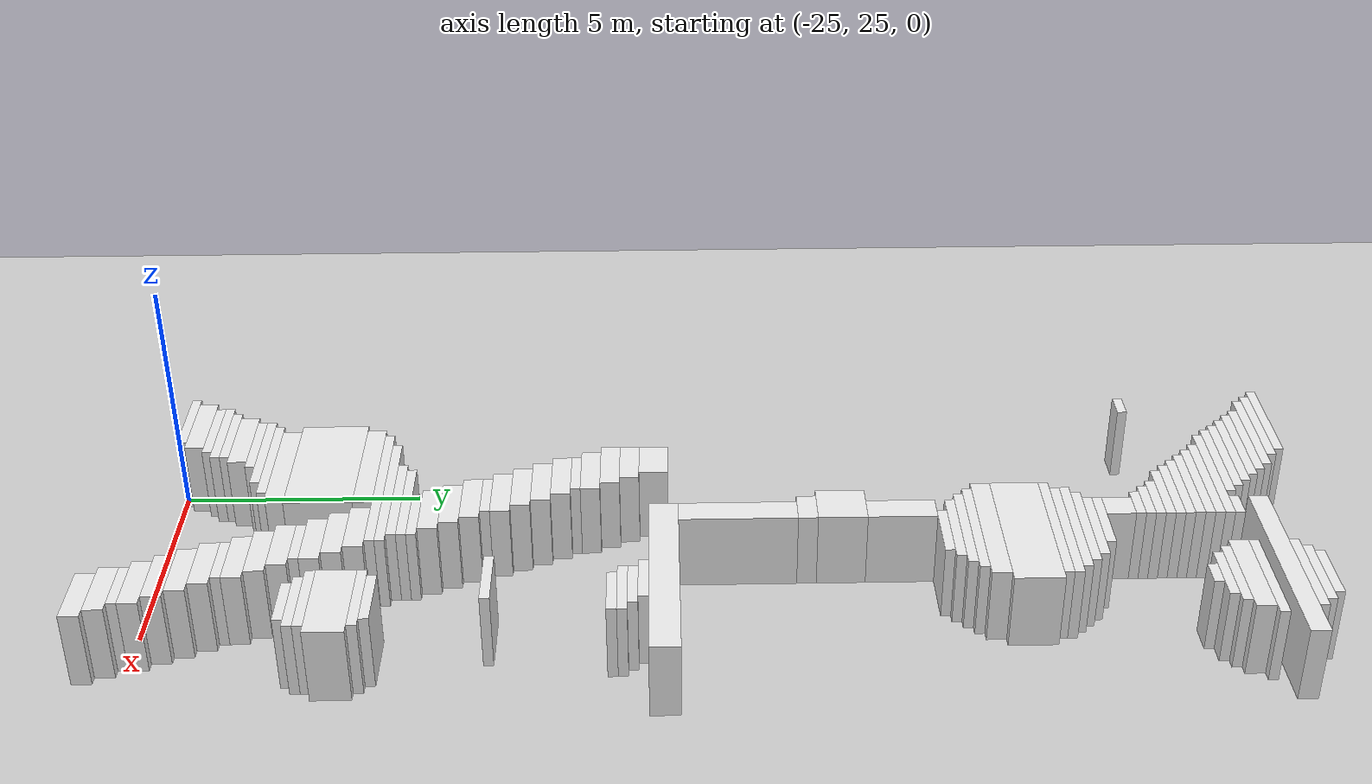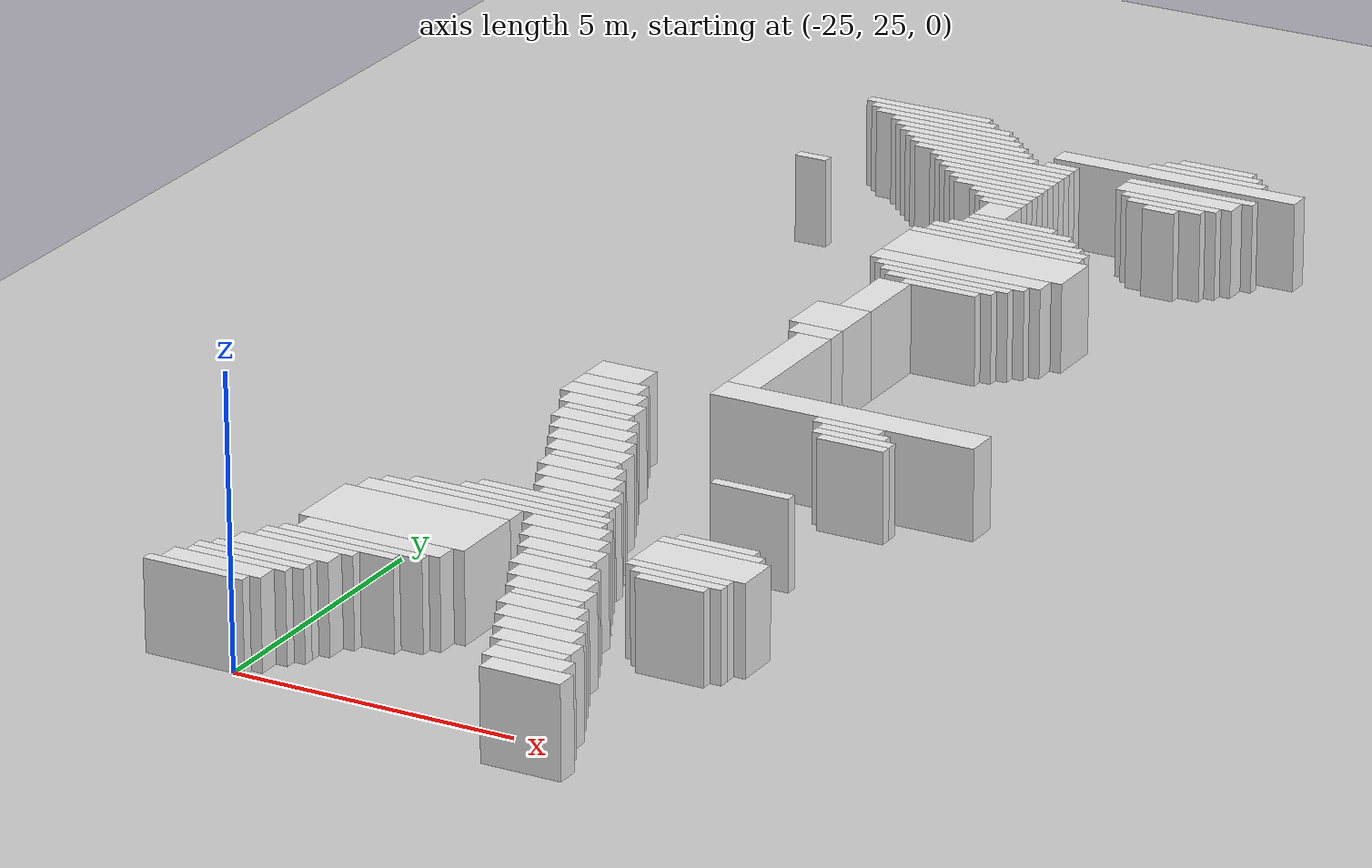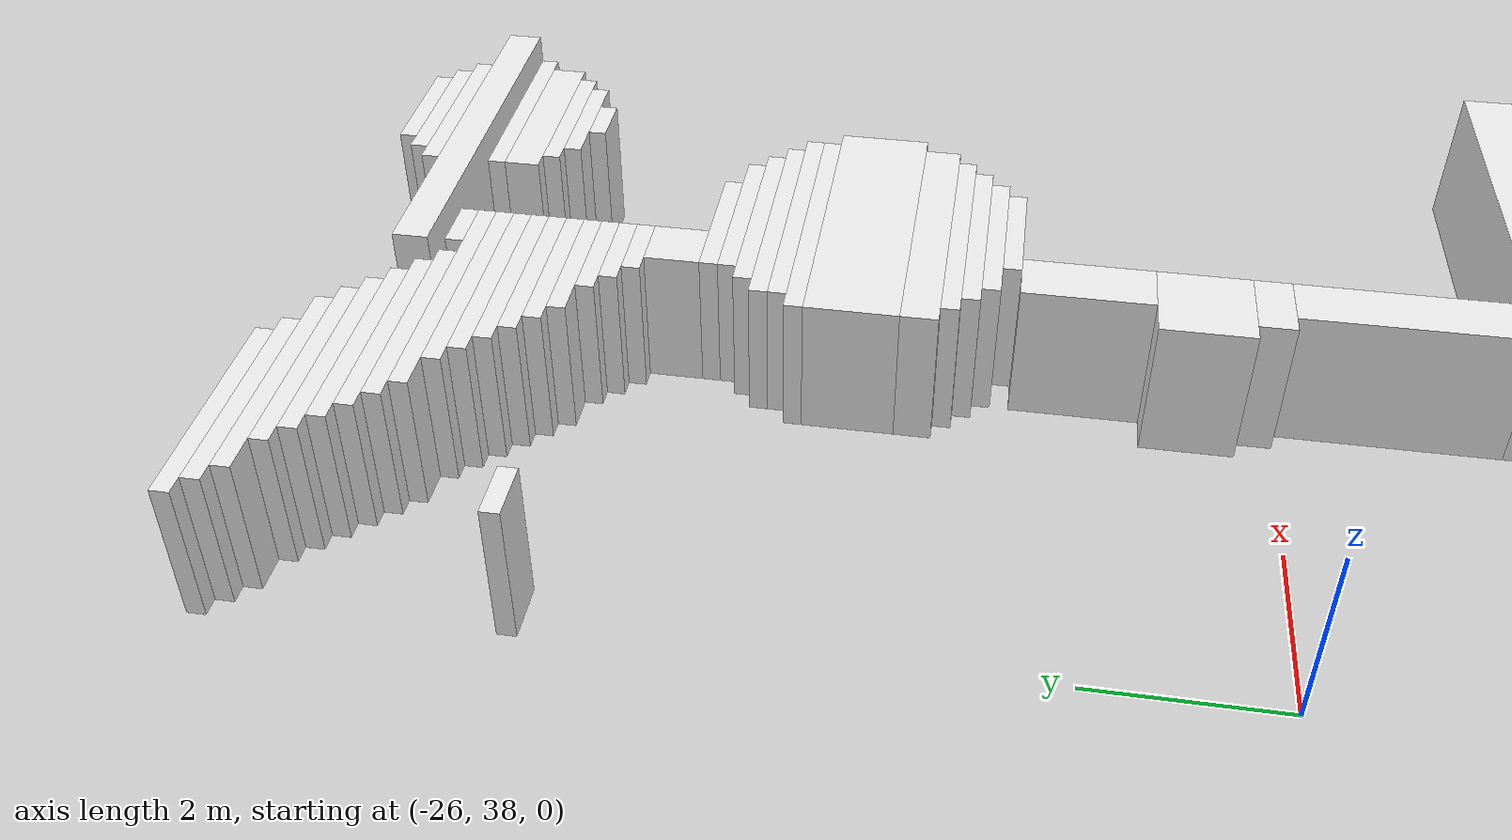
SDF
<sdf version="1.7">
 <world name="default">
  <model name="ground_plane">
   <static>1</static>
   <link name="link">
    <collision name="collision">
     <geometry><plane><normal>0 0 1</normal><size>120 120</size></plane></geometry>
    </collision>
    <visual name="visual">
     <geometry><plane><normal>0 0 1</normal><size>120 120</size></plane></geometry>
     <material>
      <script><uri>file://media/materials/scripts/gazebo.material</uri><name>Gazebo/Grey</name></script>
     </material>
    </visual>
   </link>
  </model>
  <model name="random_complex_03_model">
   <static>1</static>
   <link name="obs_2">
    <pose>-25.2000 48.3000 0.8000 0 0 0</pose>
    <collision name="obs_2_col"><geometry><box><size>2.4000 0.2000 1.6000</size></box></geometry></collision>
    <visual name="obs_2_vis">
     <geometry><box><size>2.4000 0.2000 1.6000</size></box></geometry>
     <material>
      <script><uri>file://media/materials/scripts/gazebo.material</uri><name>Gazebo/White</name></script>
     </material>
    </visual>
   </link>
   <link name="obs_4">
    <pose>-25.0000 48.1000 0.8000 0 0 0</pose>
    <collision name="obs_4_col"><geometry><box><size>2.4000 0.2000 1.6000</size></box></geometry></collision>
    <visual name="obs_4_vis">
     <geometry><box><size>2.4000 0.2000 1.6000</size></box></geometry>
     <material>
      <script><uri>file://media/materials/scripts/gazebo.material</uri><name>Gazebo/White</name></script>
     </material>
    </visual>
   </link>
   <link name="obs_5">
    <pose>-19.5000 48.1000 0.8000 0 0 0</pose>
    <collision name="obs_5_col"><geometry><box><size>1.4000 0.2000 1.6000</size></box></geometry></collision>
    <visual name="obs_5_vis">
     <geometry><box><size>1.4000 0.2000 1.6000</size></box></geometry>
     <material>
      <script><uri>file://media/materials/scripts/gazebo.material</uri><name>Gazebo/White</name></script>
     </material>
    </visual>
   </link>
   <link name="obs_8">
    <pose>-24.7000 47.9000 0.8000 0 0 0</pose>
    <collision name="obs_8_col"><geometry><box><size>2.6000 0.2000 1.6000</size></box></geometry></collision>
    <visual name="obs_8_vis">
     <geometry><box><size>2.6000 0.2000 1.6000</size></box></geometry>
     <material>
      <script><uri>file://media/materials/scripts/gazebo.material</uri><name>Gazebo/White</name></script>
     </material>
    </visual>
   </link>
   <link name="obs_9">
    <pose>-19.5000 47.9000 0.8000 0 0 0</pose>
    <collision name="obs_9_col"><geometry><box><size>1.8000 0.2000 1.6000</size></box></geometry></collision>
    <visual name="obs_9_vis">
     <geometry><box><size>1.8000 0.2000 1.6000</size></box></geometry>
     <material>
      <script><uri>file://media/materials/scripts/gazebo.material</uri><name>Gazebo/White</name></script>
     </material>
    </visual>
   </link>
   <link name="obs_13">
    <pose>-24.4000 47.7000 0.8000 0 0 0</pose>
    <collision name="obs_13_col"><geometry><box><size>2.4000 0.2000 1.6000</size></box></geometry></collision>
    <visual name="obs_13_vis">
     <geometry><box><size>2.4000 0.2000 1.6000</size></box></geometry>
     <material>
      <script><uri>file://media/materials/scripts/gazebo.material</uri><name>Gazebo/White</name></script>
     </material>
    </visual>
   </link>
   <link name="obs_14">
    <pose>-19.5000 47.7000 0.8000 0 0 0</pose>
    <collision name="obs_14_col"><geometry><box><size>2.2000 0.2000 1.6000</size></box></geometry></collision>
    <visual name="obs_14_vis">
     <geometry><box><size>2.2000 0.2000 1.6000</size></box></geometry>
     <material>
      <script><uri>file://media/materials/scripts/gazebo.material</uri><name>Gazebo/White</name></script>
     </material>
    </visual>
   </link>
   <link name="obs_18">
    <pose>-24.2000 47.5000 0.8000 0 0 0</pose>
    <collision name="obs_18_col"><geometry><box><size>2.4000 0.2000 1.6000</size></box></geometry></collision>
    <visual name="obs_18_vis">
     <geometry><box><size>2.4000 0.2000 1.6000</size></box></geometry>
     <material>
      <script><uri>file://media/materials/scripts/gazebo.material</uri><name>Gazebo/White</name></script>
     </material>
    </visual>
   </link>
   <link name="obs_21">
    <pose>-19.9000 47.4000 0.8000 0 0 0</pose>
    <collision name="obs_21_col"><geometry><box><size>4.6000 0.4000 1.6000</size></box></geometry></collision>
    <visual name="obs_21_vis">
     <geometry><box><size>4.6000 0.4000 1.6000</size></box></geometry>
     <material>
      <script><uri>file://media/materials/scripts/gazebo.material</uri><name>Gazebo/White</name></script>
     </material>
    </visual>
   </link>
   <link name="obs_23">
    <pose>-24.0000 47.3000 0.8000 0 0 0</pose>
    <collision name="obs_23_col"><geometry><box><size>2.4000 0.2000 1.6000</size></box></geometry></collision>
    <visual name="obs_23_vis">
     <geometry><box><size>2.4000 0.2000 1.6000</size></box></geometry>
     <material>
      <script><uri>file://media/materials/scripts/gazebo.material</uri><name>Gazebo/White</name></script>
     </material>
    </visual>
   </link>
   <link name="obs_25">
    <pose>-23.8000 47.1000 0.8000 0 0 0</pose>
    <collision name="obs_25_col"><geometry><box><size>2.4000 0.2000 1.6000</size></box></geometry></collision>
    <visual name="obs_25_vis">
     <geometry><box><size>2.4000 0.2000 1.6000</size></box></geometry>
     <material>
      <script><uri>file://media/materials/scripts/gazebo.material</uri><name>Gazebo/White</name></script>
     </material>
    </visual>
   </link>
   <link name="obs_27">
    <pose>-23.6000 46.9000 0.8000 0 0 0</pose>
    <collision name="obs_27_col"><geometry><box><size>2.4000 0.2000 1.6000</size></box></geometry></collision>
    <visual name="obs_27_vis">
     <geometry><box><size>2.4000 0.2000 1.6000</size></box></geometry>
     <material>
      <script><uri>file://media/materials/scripts/gazebo.material</uri><name>Gazebo/White</name></script>
     </material>
    </visual>
   </link>
   <link name="obs_28">
    <pose>-21.9000 46.9000 0.8000 0 0 0</pose>
    <collision name="obs_28_col"><geometry><box><size>0.6000 0.2000 1.6000</size></box></geometry></collision>
    <visual name="obs_28_vis">
     <geometry><box><size>0.6000 0.2000 1.6000</size></box></geometry>
     <material>
      <script><uri>file://media/materials/scripts/gazebo.material</uri><name>Gazebo/White</name></script>
     </material>
    </visual>
   </link>
   <link name="obs_29">
    <pose>-19.4000 46.9000 0.8000 0 0 0</pose>
    <collision name="obs_29_col"><geometry><box><size>2.4000 0.2000 1.6000</size></box></geometry></collision>
    <visual name="obs_29_vis">
     <geometry><box><size>2.4000 0.2000 1.6000</size></box></geometry>
     <material>
      <script><uri>file://media/materials/scripts/gazebo.material</uri><name>Gazebo/White</name></script>
     </material>
    </visual>
   </link>
   <link name="obs_33">
    <pose>-23.1000 46.7000 0.8000 0 0 0</pose>
    <collision name="obs_33_col"><geometry><box><size>3.0000 0.2000 1.6000</size></box></geometry></collision>
    <visual name="obs_33_vis">
     <geometry><box><size>3.0000 0.2000 1.6000</size></box></geometry>
     <material>
      <script><uri>file://media/materials/scripts/gazebo.material</uri><name>Gazebo/White</name></script>
     </material>
    </visual>
   </link>
   <link name="obs_35">
    <pose>-19.5000 46.6000 0.8000 0 0 0</pose>
    <collision name="obs_35_col"><geometry><box><size>2.2000 0.4000 1.6000</size></box></geometry></collision>
    <visual name="obs_35_vis">
     <geometry><box><size>2.2000 0.4000 1.6000</size></box></geometry>
     <material>
      <script><uri>file://media/materials/scripts/gazebo.material</uri><name>Gazebo/White</name></script>
     </material>
    </visual>
   </link>
   <link name="obs_36">
    <pose>-22.9000 46.5000 0.8000 0 0 0</pose>
    <collision name="obs_36_col"><geometry><box><size>2.6000 0.2000 1.6000</size></box></geometry></collision>
    <visual name="obs_36_vis">
     <geometry><box><size>2.6000 0.2000 1.6000</size></box></geometry>
     <material>
      <script><uri>file://media/materials/scripts/gazebo.material</uri><name>Gazebo/White</name></script>
     </material>
    </visual>
   </link>
   <link name="obs_39">
    <pose>-22.8000 46.3000 0.8000 0 0 0</pose>
    <collision name="obs_39_col"><geometry><box><size>2.4000 0.2000 1.6000</size></box></geometry></collision>
    <visual name="obs_39_vis">
     <geometry><box><size>2.4000 0.2000 1.6000</size></box></geometry>
     <material>
      <script><uri>file://media/materials/scripts/gazebo.material</uri><name>Gazebo/White</name></script>
     </material>
    </visual>
   </link>
   <link name="obs_40">
    <pose>-19.5000 46.3000 0.8000 0 0 0</pose>
    <collision name="obs_40_col"><geometry><box><size>1.8000 0.2000 1.6000</size></box></geometry></collision>
    <visual name="obs_40_vis">
     <geometry><box><size>1.8000 0.2000 1.6000</size></box></geometry>
     <material>
      <script><uri>file://media/materials/scripts/gazebo.material</uri><name>Gazebo/White</name></script>
     </material>
    </visual>
   </link>
   <link name="obs_43">
    <pose>-22.7000 46.1000 0.8000 0 0 0</pose>
    <collision name="obs_43_col"><geometry><box><size>2.2000 0.2000 1.6000</size></box></geometry></collision>
    <visual name="obs_43_vis">
     <geometry><box><size>2.2000 0.2000 1.6000</size></box></geometry>
     <material>
      <script><uri>file://media/materials/scripts/gazebo.material</uri><name>Gazebo/White</name></script>
     </material>
    </visual>
   </link>
   <link name="obs_44">
    <pose>-19.5000 46.1000 0.8000 0 0 0</pose>
    <collision name="obs_44_col"><geometry><box><size>1.4000 0.2000 1.6000</size></box></geometry></collision>
    <visual name="obs_44_vis">
     <geometry><box><size>1.4000 0.2000 1.6000</size></box></geometry>
     <material>
      <script><uri>file://media/materials/scripts/gazebo.material</uri><name>Gazebo/White</name></script>
     </material>
    </visual>
   </link>
   <link name="obs_48">
    <pose>-22.6000 45.9000 0.8000 0 0 0</pose>
    <collision name="obs_48_col"><geometry><box><size>2.0000 0.2000 1.6000</size></box></geometry></collision>
    <visual name="obs_48_vis">
     <geometry><box><size>2.0000 0.2000 1.6000</size></box></geometry>
     <material>
      <script><uri>file://media/materials/scripts/gazebo.material</uri><name>Gazebo/White</name></script>
     </material>
    </visual>
   </link>
   <link name="obs_49">
    <pose>-19.5000 45.9000 0.8000 0 0 0</pose>
    <collision name="obs_49_col"><geometry><box><size>0.6000 0.2000 1.6000</size></box></geometry></collision>
    <visual name="obs_49_vis">
     <geometry><box><size>0.6000 0.2000 1.6000</size></box></geometry>
     <material>
      <script><uri>file://media/materials/scripts/gazebo.material</uri><name>Gazebo/White</name></script>
     </material>
    </visual>
   </link>
   <link name="obs_53">
    <pose>-22.5000 45.7000 0.8000 0 0 0</pose>
    <collision name="obs_53_col"><geometry><box><size>1.8000 0.2000 1.6000</size></box></geometry></collision>
    <visual name="obs_53_vis">
     <geometry><box><size>1.8000 0.2000 1.6000</size></box></geometry>
     <material>
      <script><uri>file://media/materials/scripts/gazebo.material</uri><name>Gazebo/White</name></script>
     </material>
    </visual>
   </link>
   <link name="obs_57">
    <pose>-22.4000 45.5000 0.8000 0 0 0</pose>
    <collision name="obs_57_col"><geometry><box><size>1.6000 0.2000 1.6000</size></box></geometry></collision>
    <visual name="obs_57_vis">
     <geometry><box><size>1.6000 0.2000 1.6000</size></box></geometry>
     <material>
      <script><uri>file://media/materials/scripts/gazebo.material</uri><name>Gazebo/White</name></script>
     </material>
    </visual>
   </link>
   <link name="obs_60">
    <pose>-25.9000 45.3000 0.8000 0 0 0</pose>
    <collision name="obs_60_col"><geometry><box><size>0.6000 0.2000 1.6000</size></box></geometry></collision>
    <visual name="obs_60_vis">
     <geometry><box><size>0.6000 0.2000 1.6000</size></box></geometry>
     <material>
      <script><uri>file://media/materials/scripts/gazebo.material</uri><name>Gazebo/White</name></script>
     </material>
    </visual>
   </link>
   <link name="obs_61">
    <pose>-22.2000 45.3000 0.8000 0 0 0</pose>
    <collision name="obs_61_col"><geometry><box><size>1.2000 0.2000 1.6000</size></box></geometry></collision>
    <visual name="obs_61_vis">
     <geometry><box><size>1.2000 0.2000 1.6000</size></box></geometry>
     <material>
      <script><uri>file://media/materials/scripts/gazebo.material</uri><name>Gazebo/White</name></script>
     </material>
    </visual>
   </link>
   <link name="obs_65">
    <pose>-22.1000 45.1000 0.8000 0 0 0</pose>
    <collision name="obs_65_col"><geometry><box><size>1.0000 0.2000 1.6000</size></box></geometry></collision>
    <visual name="obs_65_vis">
     <geometry><box><size>1.0000 0.2000 1.6000</size></box></geometry>
     <material>
      <script><uri>file://media/materials/scripts/gazebo.material</uri><name>Gazebo/White</name></script>
     </material>
    </visual>
   </link>
   <link name="obs_69">
    <pose>-22.0000 44.9000 0.8000 0 0 0</pose>
    <collision name="obs_69_col"><geometry><box><size>0.8000 0.2000 1.6000</size></box></geometry></collision>
    <visual name="obs_69_vis">
     <geometry><box><size>0.8000 0.2000 1.6000</size></box></geometry>
     <material>
      <script><uri>file://media/materials/scripts/gazebo.material</uri><name>Gazebo/White</name></script>
     </material>
    </visual>
   </link>
   <link name="obs_80">
    <pose>-21.9000 44.5000 0.8000 0 0 0</pose>
    <collision name="obs_80_col"><geometry><box><size>0.6000 0.6000 1.6000</size></box></geometry></collision>
    <visual name="obs_80_vis">
     <geometry><box><size>0.6000 0.6000 1.6000</size></box></geometry>
     <material>
      <script><uri>file://media/materials/scripts/gazebo.material</uri><name>Gazebo/White</name></script>
     </material>
    </visual>
   </link>
   <link name="obs_87">
    <pose>-21.4000 44.1000 0.8000 0 0 0</pose>
    <collision name="obs_87_col"><geometry><box><size>1.6000 0.2000 1.6000</size></box></geometry></collision>
    <visual name="obs_87_vis">
     <geometry><box><size>1.6000 0.2000 1.6000</size></box></geometry>
     <material>
      <script><uri>file://media/materials/scripts/gazebo.material</uri><name>Gazebo/White</name></script>
     </material>
    </visual>
   </link>
   <link name="obs_91">
    <pose>-21.2000 43.9000 0.8000 0 0 0</pose>
    <collision name="obs_91_col"><geometry><box><size>2.0000 0.2000 1.6000</size></box></geometry></collision>
    <visual name="obs_91_vis">
     <geometry><box><size>2.0000 0.2000 1.6000</size></box></geometry>
     <material>
      <script><uri>file://media/materials/scripts/gazebo.material</uri><name>Gazebo/White</name></script>
     </material>
    </visual>
   </link>
   <link name="obs_95">
    <pose>-21.2000 43.7000 0.8000 0 0 0</pose>
    <collision name="obs_95_col"><geometry><box><size>2.4000 0.2000 1.6000</size></box></geometry></collision>
    <visual name="obs_95_vis">
     <geometry><box><size>2.4000 0.2000 1.6000</size></box></geometry>
     <material>
      <script><uri>file://media/materials/scripts/gazebo.material</uri><name>Gazebo/White</name></script>
     </material>
    </visual>
   </link>
   <link name="obs_102">
    <pose>-21.2000 43.5000 0.8000 0 0 0</pose>
    <collision name="obs_102_col"><geometry><box><size>2.8000 0.2000 1.6000</size></box></geometry></collision>
    <visual name="obs_102_vis">
     <geometry><box><size>2.8000 0.2000 1.6000</size></box></geometry>
     <material>
      <script><uri>file://media/materials/scripts/gazebo.material</uri><name>Gazebo/White</name></script>
     </material>
    </visual>
   </link>
   <link name="obs_108">
    <pose>-21.1000 43.3000 0.8000 0 0 0</pose>
    <collision name="obs_108_col"><geometry><box><size>3.0000 0.2000 1.6000</size></box></geometry></collision>
    <visual name="obs_108_vis">
     <geometry><box><size>3.0000 0.2000 1.6000</size></box></geometry>
     <material>
      <script><uri>file://media/materials/scripts/gazebo.material</uri><name>Gazebo/White</name></script>
     </material>
    </visual>
   </link>
   <link name="obs_115">
    <pose>-21.2000 43.1000 0.8000 0 0 0</pose>
    <collision name="obs_115_col"><geometry><box><size>3.2000 0.2000 1.6000</size></box></geometry></collision>
    <visual name="obs_115_vis">
     <geometry><box><size>3.2000 0.2000 1.6000</size></box></geometry>
     <material>
      <script><uri>file://media/materials/scripts/gazebo.material</uri><name>Gazebo/White</name></script>
     </material>
    </visual>
   </link>
   <link name="obs_141">
    <pose>-21.1000 42.5000 0.8000 0 0 0</pose>
    <collision name="obs_141_col"><geometry><box><size>3.4000 1.0000 1.6000</size></box></geometry></collision>
    <visual name="obs_141_vis">
     <geometry><box><size>3.4000 1.0000 1.6000</size></box></geometry>
     <material>
      <script><uri>file://media/materials/scripts/gazebo.material</uri><name>Gazebo/White</name></script>
     </material>
    </visual>
   </link>
   <link name="obs_152">
    <pose>-21.2000 41.8000 0.8000 0 0 0</pose>
    <collision name="obs_152_col"><geometry><box><size>3.2000 0.4000 1.6000</size></box></geometry></collision>
    <visual name="obs_152_vis">
     <geometry><box><size>3.2000 0.4000 1.6000</size></box></geometry>
     <material>
      <script><uri>file://media/materials/scripts/gazebo.material</uri><name>Gazebo/White</name></script>
     </material>
    </visual>
   </link>
   <link name="obs_155">
    <pose>-21.2000 41.5000 0.8000 0 0 0</pose>
    <collision name="obs_155_col"><geometry><box><size>2.8000 0.2000 1.6000</size></box></geometry></collision>
    <visual name="obs_155_vis">
     <geometry><box><size>2.8000 0.2000 1.6000</size></box></geometry>
     <material>
      <script><uri>file://media/materials/scripts/gazebo.material</uri><name>Gazebo/White</name></script>
     </material>
    </visual>
   </link>
   <link name="obs_158">
    <pose>-21.2000 41.3000 0.8000 0 0 0</pose>
    <collision name="obs_158_col"><geometry><box><size>2.4000 0.2000 1.6000</size></box></geometry></collision>
    <visual name="obs_158_vis">
     <geometry><box><size>2.4000 0.2000 1.6000</size></box></geometry>
     <material>
      <script><uri>file://media/materials/scripts/gazebo.material</uri><name>Gazebo/White</name></script>
     </material>
    </visual>
   </link>
   <link name="obs_161">
    <pose>-21.2000 41.1000 0.8000 0 0 0</pose>
    <collision name="obs_161_col"><geometry><box><size>2.0000 0.2000 1.6000</size></box></geometry></collision>
    <visual name="obs_161_vis">
     <geometry><box><size>2.0000 0.2000 1.6000</size></box></geometry>
     <material>
      <script><uri>file://media/materials/scripts/gazebo.material</uri><name>Gazebo/White</name></script>
     </material>
    </visual>
   </link>
   <link name="obs_167">
    <pose>-21.1000 40.9000 0.8000 0 0 0</pose>
    <collision name="obs_167_col"><geometry><box><size>1.4000 0.2000 1.6000</size></box></geometry></collision>
    <visual name="obs_167_vis">
     <geometry><box><size>1.4000 0.2000 1.6000</size></box></geometry>
     <material>
      <script><uri>file://media/materials/scripts/gazebo.material</uri><name>Gazebo/White</name></script>
     </material>
    </visual>
   </link>
   <link name="obs_200">
    <pose>-21.9000 40.1000 0.8000 0 0 0</pose>
    <collision name="obs_200_col"><geometry><box><size>0.6000 1.4000 1.6000</size></box></geometry></collision>
    <visual name="obs_200_vis">
     <geometry><box><size>0.6000 1.4000 1.6000</size></box></geometry>
     <material>
      <script><uri>file://media/materials/scripts/gazebo.material</uri><name>Gazebo/White</name></script>
     </material>
    </visual>
   </link>
   <link name="obs_233">
    <pose>-22.1000 38.9000 0.8000 0 0 0</pose>
    <collision name="obs_233_col"><geometry><box><size>1.0000 1.0000 1.6000</size></box></geometry></collision>
    <visual name="obs_233_vis">
     <geometry><box><size>1.0000 1.0000 1.6000</size></box></geometry>
     <material>
      <script><uri>file://media/materials/scripts/gazebo.material</uri><name>Gazebo/White</name></script>
     </material>
    </visual>
   </link>
   <link name="obs_245">
    <pose>-22.0000 38.2000 0.8000 0 0 0</pose>
    <collision name="obs_245_col"><geometry><box><size>0.8000 0.4000 1.6000</size></box></geometry></collision>
    <visual name="obs_245_vis">
     <geometry><box><size>0.8000 0.4000 1.6000</size></box></geometry>
     <material>
      <script><uri>file://media/materials/scripts/gazebo.material</uri><name>Gazebo/White</name></script>
     </material>
    </visual>
   </link>
   <link name="obs_303">
    <pose>-21.9000 36.8000 0.8000 0 0 0</pose>
    <collision name="obs_303_col"><geometry><box><size>0.6000 2.4000 1.6000</size></box></geometry></collision>
    <visual name="obs_303_vis">
     <geometry><box><size>0.6000 2.4000 1.6000</size></box></geometry>
     <material>
      <script><uri>file://media/materials/scripts/gazebo.material</uri><name>Gazebo/White</name></script>
     </material>
    </visual>
   </link>
   <link name="obs_324">
    <pose>-19.8000 35.3000 0.8000 0 0 0</pose>
    <collision name="obs_324_col"><geometry><box><size>4.8000 0.6000 1.6000</size></box></geometry></collision>
    <visual name="obs_324_vis">
     <geometry><box><size>4.8000 0.6000 1.6000</size></box></geometry>
     <material>
      <script><uri>file://media/materials/scripts/gazebo.material</uri><name>Gazebo/White</name></script>
     </material>
    </visual>
   </link>
   <link name="obs_335">
    <pose>-23.9000 35.1000 0.8000 0 0 0</pose>
    <collision name="obs_335_col"><geometry><box><size>1.0000 0.6000 1.6000</size></box></geometry></collision>
    <visual name="obs_335_vis">
     <geometry><box><size>1.0000 0.6000 1.6000</size></box></geometry>
     <material>
      <script><uri>file://media/materials/scripts/gazebo.material</uri><name>Gazebo/White</name></script>
     </material>
    </visual>
   </link>
   <link name="obs_337">
    <pose>-19.6000 34.9000 0.8000 0 0 0</pose>
    <collision name="obs_337_col"><geometry><box><size>1.2000 0.2000 1.6000</size></box></geometry></collision>
    <visual name="obs_337_vis">
     <geometry><box><size>1.2000 0.2000 1.6000</size></box></geometry>
     <material>
      <script><uri>file://media/materials/scripts/gazebo.material</uri><name>Gazebo/White</name></script>
     </material>
    </visual>
   </link>
   <link name="obs_347">
    <pose>-19.4000 34.7000 0.8000 0 0 0</pose>
    <collision name="obs_347_col"><geometry><box><size>1.2000 0.2000 1.6000</size></box></geometry></collision>
    <visual name="obs_347_vis">
     <geometry><box><size>1.2000 0.2000 1.6000</size></box></geometry>
     <material>
      <script><uri>file://media/materials/scripts/gazebo.material</uri><name>Gazebo/White</name></script>
     </material>
    </visual>
   </link>
   <link name="obs_356">
    <pose>-23.8000 34.6000 0.8000 0 0 0</pose>
    <collision name="obs_356_col"><geometry><box><size>1.2000 0.4000 1.6000</size></box></geometry></collision>
    <visual name="obs_356_vis">
     <geometry><box><size>1.2000 0.4000 1.6000</size></box></geometry>
     <material>
      <script><uri>file://media/materials/scripts/gazebo.material</uri><name>Gazebo/White</name></script>
     </material>
    </visual>
   </link>
   <link name="obs_357">
    <pose>-19.3000 34.5000 0.8000 0 0 0</pose>
    <collision name="obs_357_col"><geometry><box><size>1.4000 0.2000 1.6000</size></box></geometry></collision>
    <visual name="obs_357_vis">
     <geometry><box><size>1.4000 0.2000 1.6000</size></box></geometry>
     <material>
      <script><uri>file://media/materials/scripts/gazebo.material</uri><name>Gazebo/White</name></script>
     </material>
    </visual>
   </link>
   <link name="obs_366">
    <pose>-19.2000 34.3000 0.8000 0 0 0</pose>
    <collision name="obs_366_col"><geometry><box><size>1.2000 0.2000 1.6000</size></box></geometry></collision>
    <visual name="obs_366_vis">
     <geometry><box><size>1.2000 0.2000 1.6000</size></box></geometry>
     <material>
      <script><uri>file://media/materials/scripts/gazebo.material</uri><name>Gazebo/White</name></script>
     </material>
    </visual>
   </link>
   <link name="obs_371">
    <pose>-23.7000 34.2000 0.8000 0 0 0</pose>
    <collision name="obs_371_col"><geometry><box><size>1.4000 0.4000 1.6000</size></box></geometry></collision>
    <visual name="obs_371_vis">
     <geometry><box><size>1.4000 0.4000 1.6000</size></box></geometry>
     <material>
      <script><uri>file://media/materials/scripts/gazebo.material</uri><name>Gazebo/White</name></script>
     </material>
    </visual>
   </link>
   <link name="obs_386">
    <pose>-23.5000 33.8000 0.8000 0 0 0</pose>
    <collision name="obs_386_col"><geometry><box><size>1.4000 0.4000 1.6000</size></box></geometry></collision>
    <visual name="obs_386_vis">
     <geometry><box><size>1.4000 0.4000 1.6000</size></box></geometry>
     <material>
      <script><uri>file://media/materials/scripts/gazebo.material</uri><name>Gazebo/White</name></script>
     </material>
    </visual>
   </link>
   <link name="obs_397">
    <pose>-23.4000 33.5000 0.8000 0 0 0</pose>
    <collision name="obs_397_col"><geometry><box><size>1.2000 0.2000 1.6000</size></box></geometry></collision>
    <visual name="obs_397_vis">
     <geometry><box><size>1.2000 0.2000 1.6000</size></box></geometry>
     <material>
      <script><uri>file://media/materials/scripts/gazebo.material</uri><name>Gazebo/White</name></script>
     </material>
    </visual>
   </link>
   <link name="obs_411">
    <pose>-23.3000 33.2000 0.8000 0 0 0</pose>
    <collision name="obs_411_col"><geometry><box><size>1.4000 0.4000 1.6000</size></box></geometry></collision>
    <visual name="obs_411_vis">
     <geometry><box><size>1.4000 0.4000 1.6000</size></box></geometry>
     <material>
      <script><uri>file://media/materials/scripts/gazebo.material</uri><name>Gazebo/White</name></script>
     </material>
    </visual>
   </link>
   <link name="obs_427">
    <pose>-23.1000 32.8000 0.8000 0 0 0</pose>
    <collision name="obs_427_col"><geometry><box><size>1.4000 0.4000 1.6000</size></box></geometry></collision>
    <visual name="obs_427_vis">
     <geometry><box><size>1.4000 0.4000 1.6000</size></box></geometry>
     <material>
      <script><uri>file://media/materials/scripts/gazebo.material</uri><name>Gazebo/White</name></script>
     </material>
    </visual>
   </link>
   <link name="obs_445">
    <pose>-22.9000 32.4000 0.8000 0 0 0</pose>
    <collision name="obs_445_col"><geometry><box><size>1.4000 0.4000 1.6000</size></box></geometry></collision>
    <visual name="obs_445_vis">
     <geometry><box><size>1.4000 0.4000 1.6000</size></box></geometry>
     <material>
      <script><uri>file://media/materials/scripts/gazebo.material</uri><name>Gazebo/White</name></script>
     </material>
    </visual>
   </link>
   <link name="obs_461">
    <pose>-22.7000 32.0000 0.8000 0 0 0</pose>
    <collision name="obs_461_col"><geometry><box><size>1.4000 0.4000 1.6000</size></box></geometry></collision>
    <visual name="obs_461_vis">
     <geometry><box><size>1.4000 0.4000 1.6000</size></box></geometry>
     <material>
      <script><uri>file://media/materials/scripts/gazebo.material</uri><name>Gazebo/White</name></script>
     </material>
    </visual>
   </link>
   <link name="obs_464">
    <pose>-19.7000 31.9000 0.8000 0 0 0</pose>
    <collision name="obs_464_col"><geometry><box><size>1.4000 0.2000 1.6000</size></box></geometry></collision>
    <visual name="obs_464_vis">
     <geometry><box><size>1.4000 0.2000 1.6000</size></box></geometry>
     <material>
      <script><uri>file://media/materials/scripts/gazebo.material</uri><name>Gazebo/White</name></script>
     </material>
    </visual>
   </link>
   <link name="obs_472">
    <pose>-22.6000 31.7000 0.8000 0 0 0</pose>
    <collision name="obs_472_col"><geometry><box><size>1.2000 0.2000 1.6000</size></box></geometry></collision>
    <visual name="obs_472_vis">
     <geometry><box><size>1.2000 0.2000 1.6000</size></box></geometry>
     <material>
      <script><uri>file://media/materials/scripts/gazebo.material</uri><name>Gazebo/White</name></script>
     </material>
    </visual>
   </link>
   <link name="obs_487">
    <pose>-22.5000 31.4000 0.8000 0 0 0</pose>
    <collision name="obs_487_col"><geometry><box><size>1.4000 0.4000 1.6000</size></box></geometry></collision>
    <visual name="obs_487_vis">
     <geometry><box><size>1.4000 0.4000 1.6000</size></box></geometry>
     <material>
      <script><uri>file://media/materials/scripts/gazebo.material</uri><name>Gazebo/White</name></script>
     </material>
    </visual>
   </link>
   <link name="obs_500">
    <pose>-22.3000 31.0000 0.8000 0 0 0</pose>
    <collision name="obs_500_col"><geometry><box><size>1.4000 0.4000 1.6000</size></box></geometry></collision>
    <visual name="obs_500_vis">
     <geometry><box><size>1.4000 0.4000 1.6000</size></box></geometry>
     <material>
      <script><uri>file://media/materials/scripts/gazebo.material</uri><name>Gazebo/White</name></script>
     </material>
    </visual>
   </link>
   <link name="obs_514">
    <pose>-22.1000 30.6000 0.8000 0 0 0</pose>
    <collision name="obs_514_col"><geometry><box><size>1.4000 0.4000 1.6000</size></box></geometry></collision>
    <visual name="obs_514_vis">
     <geometry><box><size>1.4000 0.4000 1.6000</size></box></geometry>
     <material>
      <script><uri>file://media/materials/scripts/gazebo.material</uri><name>Gazebo/White</name></script>
     </material>
    </visual>
   </link>
   <link name="obs_525">
    <pose>-21.9000 30.3000 0.8000 0 0 0</pose>
    <collision name="obs_525_col"><geometry><box><size>1.4000 0.2000 1.6000</size></box></geometry></collision>
    <visual name="obs_525_vis">
     <geometry><box><size>1.4000 0.2000 1.6000</size></box></geometry>
     <material>
      <script><uri>file://media/materials/scripts/gazebo.material</uri><name>Gazebo/White</name></script>
     </material>
    </visual>
   </link>
   <link name="obs_534">
    <pose>-22.4000 30.1000 0.8000 0 0 0</pose>
    <collision name="obs_534_col"><geometry><box><size>2.4000 0.2000 1.6000</size></box></geometry></collision>
    <visual name="obs_534_vis">
     <geometry><box><size>2.4000 0.2000 1.6000</size></box></geometry>
     <material>
      <script><uri>file://media/materials/scripts/gazebo.material</uri><name>Gazebo/White</name></script>
     </material>
    </visual>
   </link>
   <link name="obs_540">
    <pose>-22.5000 29.9000 0.8000 0 0 0</pose>
    <collision name="obs_540_col"><geometry><box><size>2.6000 0.2000 1.6000</size></box></geometry></collision>
    <visual name="obs_540_vis">
     <geometry><box><size>2.6000 0.2000 1.6000</size></box></geometry>
     <material>
      <script><uri>file://media/materials/scripts/gazebo.material</uri><name>Gazebo/White</name></script>
     </material>
    </visual>
   </link>
   <link name="obs_550">
    <pose>-22.8000 29.7000 0.8000 0 0 0</pose>
    <collision name="obs_550_col"><geometry><box><size>3.6000 0.2000 1.6000</size></box></geometry></collision>
    <visual name="obs_550_vis">
     <geometry><box><size>3.6000 0.2000 1.6000</size></box></geometry>
     <material>
      <script><uri>file://media/materials/scripts/gazebo.material</uri><name>Gazebo/White</name></script>
     </material>
    </visual>
   </link>
   <link name="obs_551">
    <pose>-19.1000 29.7000 0.8000 0 0 0</pose>
    <collision name="obs_551_col"><geometry><box><size>1.4000 0.2000 1.6000</size></box></geometry></collision>
    <visual name="obs_551_vis">
     <geometry><box><size>1.4000 0.2000 1.6000</size></box></geometry>
     <material>
      <script><uri>file://media/materials/scripts/gazebo.material</uri><name>Gazebo/White</name></script>
     </material>
    </visual>
   </link>
   <link name="obs_559">
    <pose>-23.0000 29.5000 0.8000 0 0 0</pose>
    <collision name="obs_559_col"><geometry><box><size>4.0000 0.2000 1.6000</size></box></geometry></collision>
    <visual name="obs_559_vis">
     <geometry><box><size>4.0000 0.2000 1.6000</size></box></geometry>
     <material>
      <script><uri>file://media/materials/scripts/gazebo.material</uri><name>Gazebo/White</name></script>
     </material>
    </visual>
   </link>
   <link name="obs_560">
    <pose>-19.1000 29.5000 0.8000 0 0 0</pose>
    <collision name="obs_560_col"><geometry><box><size>1.8000 0.2000 1.6000</size></box></geometry></collision>
    <visual name="obs_560_vis">
     <geometry><box><size>1.8000 0.2000 1.6000</size></box></geometry>
     <material>
      <script><uri>file://media/materials/scripts/gazebo.material</uri><name>Gazebo/White</name></script>
     </material>
    </visual>
   </link>
   <link name="obs_572">
    <pose>-23.8000 29.2000 0.8000 0 0 0</pose>
    <collision name="obs_572_col"><geometry><box><size>2.8000 0.4000 1.6000</size></box></geometry></collision>
    <visual name="obs_572_vis">
     <geometry><box><size>2.8000 0.4000 1.6000</size></box></geometry>
     <material>
      <script><uri>file://media/materials/scripts/gazebo.material</uri><name>Gazebo/White</name></script>
     </material>
    </visual>
   </link>
   <link name="obs_573">
    <pose>-21.5000 29.2000 0.8000 0 0 0</pose>
    <collision name="obs_573_col"><geometry><box><size>1.4000 0.4000 1.6000</size></box></geometry></collision>
    <visual name="obs_573_vis">
     <geometry><box><size>1.4000 0.4000 1.6000</size></box></geometry>
     <material>
      <script><uri>file://media/materials/scripts/gazebo.material</uri><name>Gazebo/White</name></script>
     </material>
    </visual>
   </link>
   <link name="obs_587">
    <pose>-19.0000 29.0000 0.8000 0 0 0</pose>
    <collision name="obs_587_col"><geometry><box><size>2.0000 0.8000 1.6000</size></box></geometry></collision>
    <visual name="obs_587_vis">
     <geometry><box><size>2.0000 0.8000 1.6000</size></box></geometry>
     <material>
      <script><uri>file://media/materials/scripts/gazebo.material</uri><name>Gazebo/White</name></script>
     </material>
    </visual>
   </link>
   <link name="obs_588">
    <pose>-21.3000 28.8000 0.8000 0 0 0</pose>
    <collision name="obs_588_col"><geometry><box><size>1.4000 0.4000 1.6000</size></box></geometry></collision>
    <visual name="obs_588_vis">
     <geometry><box><size>1.4000 0.4000 1.6000</size></box></geometry>
     <material>
      <script><uri>file://media/materials/scripts/gazebo.material</uri><name>Gazebo/White</name></script>
     </material>
    </visual>
   </link>
   <link name="obs_596">
    <pose>-19.1000 28.5000 0.8000 0 0 0</pose>
    <collision name="obs_596_col"><geometry><box><size>1.8000 0.2000 1.6000</size></box></geometry></collision>
    <visual name="obs_596_vis">
     <geometry><box><size>1.8000 0.2000 1.6000</size></box></geometry>
     <material>
      <script><uri>file://media/materials/scripts/gazebo.material</uri><name>Gazebo/White</name></script>
     </material>
    </visual>
   </link>
   <link name="obs_601">
    <pose>-21.1000 28.4000 0.8000 0 0 0</pose>
    <collision name="obs_601_col"><geometry><box><size>1.4000 0.4000 1.6000</size></box></geometry></collision>
    <visual name="obs_601_vis">
     <geometry><box><size>1.4000 0.4000 1.6000</size></box></geometry>
     <material>
      <script><uri>file://media/materials/scripts/gazebo.material</uri><name>Gazebo/White</name></script>
     </material>
    </visual>
   </link>
   <link name="obs_603">
    <pose>-19.0000 28.3000 0.8000 0 0 0</pose>
    <collision name="obs_603_col"><geometry><box><size>1.6000 0.2000 1.6000</size></box></geometry></collision>
    <visual name="obs_603_vis">
     <geometry><box><size>1.6000 0.2000 1.6000</size></box></geometry>
     <material>
      <script><uri>file://media/materials/scripts/gazebo.material</uri><name>Gazebo/White</name></script>
     </material>
    </visual>
   </link>
   <link name="obs_610">
    <pose>-21.0000 28.1000 0.8000 0 0 0</pose>
    <collision name="obs_610_col"><geometry><box><size>1.2000 0.2000 1.6000</size></box></geometry></collision>
    <visual name="obs_610_vis">
     <geometry><box><size>1.2000 0.2000 1.6000</size></box></geometry>
     <material>
      <script><uri>file://media/materials/scripts/gazebo.material</uri><name>Gazebo/White</name></script>
     </material>
    </visual>
   </link>
   <link name="obs_611">
    <pose>-19.0000 28.1000 0.8000 0 0 0</pose>
    <collision name="obs_611_col"><geometry><box><size>1.2000 0.2000 1.6000</size></box></geometry></collision>
    <visual name="obs_611_vis">
     <geometry><box><size>1.2000 0.2000 1.6000</size></box></geometry>
     <material>
      <script><uri>file://media/materials/scripts/gazebo.material</uri><name>Gazebo/White</name></script>
     </material>
    </visual>
   </link>
   <link name="obs_619">
    <pose>-23.9000 28.3000 0.8000 0 0 0</pose>
    <collision name="obs_619_col"><geometry><box><size>3.0000 1.4000 1.6000</size></box></geometry></collision>
    <visual name="obs_619_vis">
     <geometry><box><size>3.0000 1.4000 1.6000</size></box></geometry>
     <material>
      <script><uri>file://media/materials/scripts/gazebo.material</uri><name>Gazebo/White</name></script>
     </material>
    </visual>
   </link>
   <link name="obs_621">
    <pose>-20.9000 27.8000 0.8000 0 0 0</pose>
    <collision name="obs_621_col"><geometry><box><size>1.4000 0.4000 1.6000</size></box></geometry></collision>
    <visual name="obs_621_vis">
     <geometry><box><size>1.4000 0.4000 1.6000</size></box></geometry>
     <material>
      <script><uri>file://media/materials/scripts/gazebo.material</uri><name>Gazebo/White</name></script>
     </material>
    </visual>
   </link>
   <link name="obs_633">
    <pose>-23.9000 27.4000 0.8000 0 0 0</pose>
    <collision name="obs_633_col"><geometry><box><size>2.6000 0.4000 1.6000</size></box></geometry></collision>
    <visual name="obs_633_vis">
     <geometry><box><size>2.6000 0.4000 1.6000</size></box></geometry>
     <material>
      <script><uri>file://media/materials/scripts/gazebo.material</uri><name>Gazebo/White</name></script>
     </material>
    </visual>
   </link>
   <link name="obs_634">
    <pose>-20.7000 27.4000 0.8000 0 0 0</pose>
    <collision name="obs_634_col"><geometry><box><size>1.4000 0.4000 1.6000</size></box></geometry></collision>
    <visual name="obs_634_vis">
     <geometry><box><size>1.4000 0.4000 1.6000</size></box></geometry>
     <material>
      <script><uri>file://media/materials/scripts/gazebo.material</uri><name>Gazebo/White</name></script>
     </material>
    </visual>
   </link>
   <link name="obs_643">
    <pose>-24.1000 27.1000 0.8000 0 0 0</pose>
    <collision name="obs_643_col"><geometry><box><size>2.6000 0.2000 1.6000</size></box></geometry></collision>
    <visual name="obs_643_vis">
     <geometry><box><size>2.6000 0.2000 1.6000</size></box></geometry>
     <material>
      <script><uri>file://media/materials/scripts/gazebo.material</uri><name>Gazebo/White</name></script>
     </material>
    </visual>
   </link>
   <link name="obs_651">
    <pose>-20.5000 27.0000 0.8000 0 0 0</pose>
    <collision name="obs_651_col"><geometry><box><size>1.4000 0.4000 1.6000</size></box></geometry></collision>
    <visual name="obs_651_vis">
     <geometry><box><size>1.4000 0.4000 1.6000</size></box></geometry>
     <material>
      <script><uri>file://media/materials/scripts/gazebo.material</uri><name>Gazebo/White</name></script>
     </material>
    </visual>
   </link>
   <link name="obs_653">
    <pose>-24.4000 26.9000 0.8000 0 0 0</pose>
    <collision name="obs_653_col"><geometry><box><size>2.4000 0.2000 1.6000</size></box></geometry></collision>
    <visual name="obs_653_vis">
     <geometry><box><size>2.4000 0.2000 1.6000</size></box></geometry>
     <material>
      <script><uri>file://media/materials/scripts/gazebo.material</uri><name>Gazebo/White</name></script>
     </material>
    </visual>
   </link>
   <link name="obs_663">
    <pose>-24.7000 26.7000 0.8000 0 0 0</pose>
    <collision name="obs_663_col"><geometry><box><size>1.8000 0.2000 1.6000</size></box></geometry></collision>
    <visual name="obs_663_vis">
     <geometry><box><size>1.8000 0.2000 1.6000</size></box></geometry>
     <material>
      <script><uri>file://media/materials/scripts/gazebo.material</uri><name>Gazebo/White</name></script>
     </material>
    </visual>
   </link>
   <link name="obs_664">
    <pose>-20.4000 26.7000 0.8000 0 0 0</pose>
    <collision name="obs_664_col"><geometry><box><size>1.2000 0.2000 1.6000</size></box></geometry></collision>
    <visual name="obs_664_vis">
     <geometry><box><size>1.2000 0.2000 1.6000</size></box></geometry>
     <material>
      <script><uri>file://media/materials/scripts/gazebo.material</uri><name>Gazebo/White</name></script>
     </material>
    </visual>
   </link>
   <link name="obs_677">
    <pose>-24.9000 26.4000 0.8000 0 0 0</pose>
    <collision name="obs_677_col"><geometry><box><size>1.8000 0.4000 1.6000</size></box></geometry></collision>
    <visual name="obs_677_vis">
     <geometry><box><size>1.8000 0.4000 1.6000</size></box></geometry>
     <material>
      <script><uri>file://media/materials/scripts/gazebo.material</uri><name>Gazebo/White</name></script>
     </material>
    </visual>
   </link>
   <link name="obs_678">
    <pose>-20.3000 26.4000 0.8000 0 0 0</pose>
    <collision name="obs_678_col"><geometry><box><size>1.4000 0.4000 1.6000</size></box></geometry></collision>
    <visual name="obs_678_vis">
     <geometry><box><size>1.4000 0.4000 1.6000</size></box></geometry>
     <material>
      <script><uri>file://media/materials/scripts/gazebo.material</uri><name>Gazebo/White</name></script>
     </material>
    </visual>
   </link>
   <link name="obs_688">
    <pose>-25.1000 26.1000 0.8000 0 0 0</pose>
    <collision name="obs_688_col"><geometry><box><size>1.8000 0.2000 1.6000</size></box></geometry></collision>
    <visual name="obs_688_vis">
     <geometry><box><size>1.8000 0.2000 1.6000</size></box></geometry>
     <material>
      <script><uri>file://media/materials/scripts/gazebo.material</uri><name>Gazebo/White</name></script>
     </material>
    </visual>
   </link>
   <link name="obs_693">
    <pose>-20.1000 26.0000 0.8000 0 0 0</pose>
    <collision name="obs_693_col"><geometry><box><size>1.4000 0.4000 1.6000</size></box></geometry></collision>
    <visual name="obs_693_vis">
     <geometry><box><size>1.4000 0.4000 1.6000</size></box></geometry>
     <material>
      <script><uri>file://media/materials/scripts/gazebo.material</uri><name>Gazebo/White</name></script>
     </material>
    </visual>
   </link>
   <link name="obs_696">
    <pose>-25.2000 25.9000 0.8000 0 0 0</pose>
    <collision name="obs_696_col"><geometry><box><size>2.0000 0.2000 1.6000</size></box></geometry></collision>
    <visual name="obs_696_vis">
     <geometry><box><size>2.0000 0.2000 1.6000</size></box></geometry>
     <material>
      <script><uri>file://media/materials/scripts/gazebo.material</uri><name>Gazebo/White</name></script>
     </material>
    </visual>
   </link>
   <link name="obs_702">
    <pose>-25.3000 25.7000 0.8000 0 0 0</pose>
    <collision name="obs_702_col"><geometry><box><size>1.8000 0.2000 1.6000</size></box></geometry></collision>
    <visual name="obs_702_vis">
     <geometry><box><size>1.8000 0.2000 1.6000</size></box></geometry>
     <material>
      <script><uri>file://media/materials/scripts/gazebo.material</uri><name>Gazebo/White</name></script>
     </material>
    </visual>
   </link>
   <link name="obs_708">
    <pose>-19.9000 25.6000 0.8000 0 0 0</pose>
    <collision name="obs_708_col"><geometry><box><size>1.4000 0.4000 1.6000</size></box></geometry></collision>
    <visual name="obs_708_vis">
     <geometry><box><size>1.4000 0.4000 1.6000</size></box></geometry>
     <material>
      <script><uri>file://media/materials/scripts/gazebo.material</uri><name>Gazebo/White</name></script>
     </material>
    </visual>
   </link>
   <link name="obs_715">
    <pose>-25.5000 25.4000 0.8000 0 0 0</pose>
    <collision name="obs_715_col"><geometry><box><size>1.8000 0.4000 1.6000</size></box></geometry></collision>
    <visual name="obs_715_vis">
     <geometry><box><size>1.8000 0.4000 1.6000</size></box></geometry>
     <material>
      <script><uri>file://media/materials/scripts/gazebo.material</uri><name>Gazebo/White</name></script>
     </material>
    </visual>
   </link>
   <link name="obs_722">
    <pose>-19.7000 25.2000 0.8000 0 0 0</pose>
    <collision name="obs_722_col"><geometry><box><size>1.4000 0.4000 1.6000</size></box></geometry></collision>
    <visual name="obs_722_vis">
     <geometry><box><size>1.4000 0.4000 1.6000</size></box></geometry>
     <material>
      <script><uri>file://media/materials/scripts/gazebo.material</uri><name>Gazebo/White</name></script>
     </material>
    </visual>
   </link>
   <link name="obs_723">
    <pose>-25.7000 25.1000 0.8000 0 0 0</pose>
    <collision name="obs_723_col"><geometry><box><size>1.8000 0.2000 1.6000</size></box></geometry></collision>
    <visual name="obs_723_vis">
     <geometry><box><size>1.8000 0.2000 1.6000</size></box></geometry>
     <material>
      <script><uri>file://media/materials/scripts/gazebo.material</uri><name>Gazebo/White</name></script>
     </material>
    </visual>
   </link>
   <link name="obs_734">
    <pose>-19.6000 24.9000 0.8000 0 0 0</pose>
    <collision name="obs_734_col"><geometry><box><size>1.2000 0.2000 1.6000</size></box></geometry></collision>
    <visual name="obs_734_vis">
     <geometry><box><size>1.2000 0.2000 1.6000</size></box></geometry>
     <material>
      <script><uri>file://media/materials/scripts/gazebo.material</uri><name>Gazebo/White</name></script>
     </material>
    </visual>
   </link>
   <link name="obs_745">
    <pose>-19.5000 24.6000 0.8000 0 0 0</pose>
    <collision name="obs_745_col"><geometry><box><size>1.4000 0.4000 1.6000</size></box></geometry></collision>
    <visual name="obs_745_vis">
     <geometry><box><size>1.4000 0.4000 1.6000</size></box></geometry>
     <material>
      <script><uri>file://media/materials/scripts/gazebo.material</uri><name>Gazebo/White</name></script>
     </material>
    </visual>
   </link>
   <link name="obs_759">
    <pose>-19.3000 24.2000 0.8000 0 0 0</pose>
    <collision name="obs_759_col"><geometry><box><size>1.4000 0.4000 1.6000</size></box></geometry></collision>
    <visual name="obs_759_vis">
     <geometry><box><size>1.4000 0.4000 1.6000</size></box></geometry>
     <material>
      <script><uri>file://media/materials/scripts/gazebo.material</uri><name>Gazebo/White</name></script>
     </material>
    </visual>
   </link>
  </model>
 </world>
</sdf>
